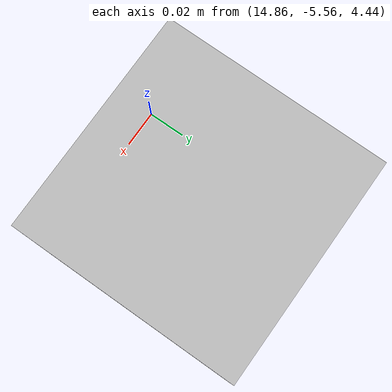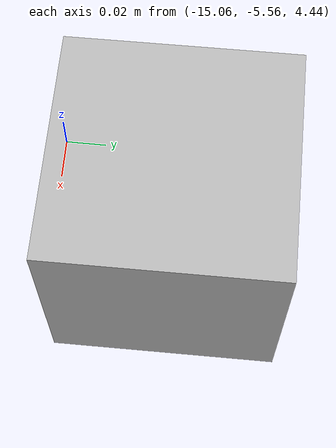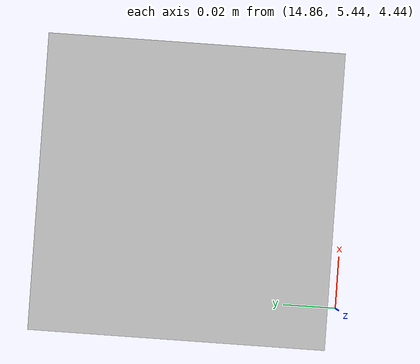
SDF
<sdf version="1.7">
 <world name="warehouse">
  <physics type="ode"><max_step_size>0.003</max_step_size><real_time_factor>1.0</real_time_factor></physics>
  <plugin name="gz::sim::systems::Physics" filename="libgz-sim-physics-system.so"/>
  <plugin name="gz::sim::systems::UserCommands" filename="libgz-sim-user-commands-system.so"/>
  <plugin name="gz::sim::systems::SceneBroadcaster" filename="libgz-sim-scene-broadcaster-system.so"/>
  <plugin name="gz::sim::systems::Sensors" filename="libgz-sim-sensors-system.so">
   <render_engine>ogre2</render_engine>
  </plugin>
  <plugin name="gz::sim::systems::Imu" filename="libgz-sim-imu-system.so"/>
  <plugin name="gz::sim::systems::NavSat" filename="libgz-sim-navsat-system.so"/>
  <scene>
   <ambient>1 1 1 1</ambient>
   <background>0.3 0.7 0.9 1</background>
   <shadows>0</shadows>
   <grid>false</grid>
  </scene>
  <spherical_coordinates>
   <surface_model>EARTH_WGS84</surface_model>
   <world_frame_orientation>ENU</world_frame_orientation>
   <latitude_deg>-22.986687</latitude_deg>
   <longitude_deg>-43.202501</longitude_deg>
   <elevation>0</elevation>
   <heading_deg>0</heading_deg>
  </spherical_coordinates>
  <model name="ground_plane">
   <static>true</static>
   <link name="link">
    <collision name="collision">
     <geometry><plane><normal>0.0 0.0 1</normal><size>1 1</size></plane></geometry>
    </collision>
   </link>
  </model>
  <include>
   <uri>https://fuel.gazebosim.org/1.0/OpenRobotics/models/Camera</uri>
   <name>camera2</name>
   <pose>-15 -5.5 4.50 0 0 0</pose>
   <static>true</static>
   <plugin name="gz_ros_camera" filename="libgz_ros_camera.so">
    <ros><namespace>/a200_0000/camera2</namespace><remapping>image_raw:=image_raw</remapping></ros>
   </plugin>
  </include>
  <include>
   <uri>https://fuel.gazebosim.org/1.0/OpenRobotics/models/Camera</uri>
   <name>camera3</name>
   <pose>-15 0 4.50 0 0 0</pose>
   <static>true</static>
   <plugin name="gz_ros_camera" filename="libgz_ros_camera.so">
    <ros><namespace>/a200_0000/camera3</namespace><remapping>image_raw:=image_raw</remapping></ros>
   </plugin>
  </include>
  <include>
   <uri>https://fuel.gazebosim.org/1.0/OpenRobotics/models/Camera</uri>
   <name>camera4</name>
   <pose>14.9 5.5 4.50 0 0 0</pose>
   <static>true</static>
   <plugin name="gz_ros_camera" filename="libgz_ros_camera.so">
    <ros><namespace>/a200_0000/camera4</namespace><remapping>image_raw:=image_raw</remapping></ros>
   </plugin>
  </include>
  <include>
   <uri>https://fuel.gazebosim.org/1.0/OpenRobotics/models/Camera</uri>
   <name>camera5</name>
   <pose>14.9 -5.5 4.50 0 0 0</pose>
   <static>true</static>
   <plugin name="gz_ros_camera" filename="libgz_ros_camera.so">
    <ros><namespace>/a200_0000/camera5</namespace><remapping>image_raw:=image_raw</remapping></ros>
   </plugin>
  </include>
  <model name="camera6">
   <self_collide>true</self_collide>
   <pose>11.75 24.75 7.0 -0.07 0.31 -2.02</pose>
   <include merge="true">
    <name>camera6</name>
    <uri>https://fuel.gazebosim.org/1.0/OpenRobotics/models/Camera</uri>
    <params>
     <sensor element_id="link::camera">
      <camera name="camera" action="modify"><camera_info_topic>camera6/camera_info</camera_info_topic></camera>
      <topic action="modify">camera6/image_raw</topic>
     </sensor>
    </params>
   </include>
  </model>
 </world>
</sdf>

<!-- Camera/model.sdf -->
<sdf version="1.5" xmlns:experimental="http://sdformat.org/schemas/experimental">
  <model name="camera">
    <pose>0 0 0.05 0 0 0</pose>
    <link name="link">
      <inertial>
        <mass>0.0</mass>
        <inertia>
          <ixx>0.0</ixx>
          <iyy>0.0</iyy>
          <izz>0.0</izz>
        </inertia>
      </inertial>
      <collision name="collision">
        <geometry>
          <box>
            <size>0.1 0.1 0.1</size>
          </box>
        </geometry>
      </collision>
      <visual name="visual">
        <geometry>
          <box>
            <size>0.1 0.1 0.1</size>
          </box>
        </geometry>
      </visual>
      <sensor name="camera" type="camera">
        <camera>
          <horizontal_fov>1.5708</horizontal_fov>
          <image>
            <width>1920</width>
            <height>1080</height>
          </image>
          <clip>
            <near>0.1</near>
            <far>100</far>
          </clip>
          <distortion>
            <k1>0.0</k1>
            <k2>0.0</k2>
            <k3>0.0</k3>
            <p1>0.0</p1>
            <p2>0.0</p2>
            <center>0.5 0.5</center>
          </distortion>

        </camera>
        <always_on>1</always_on>
        <update_rate>30</update_rate>
        <visualize>true</visualize>
        <topic>camera/image_raw</topic>
        <gz_frame_id>camera_rgb_frame</gz_frame_id>

        <camera name="camera">
          <camera_info_topic>camera/camera_info</camera_info_topic>
        </camera>

      </sensor>
    </link>
  </model>
</sdf>
